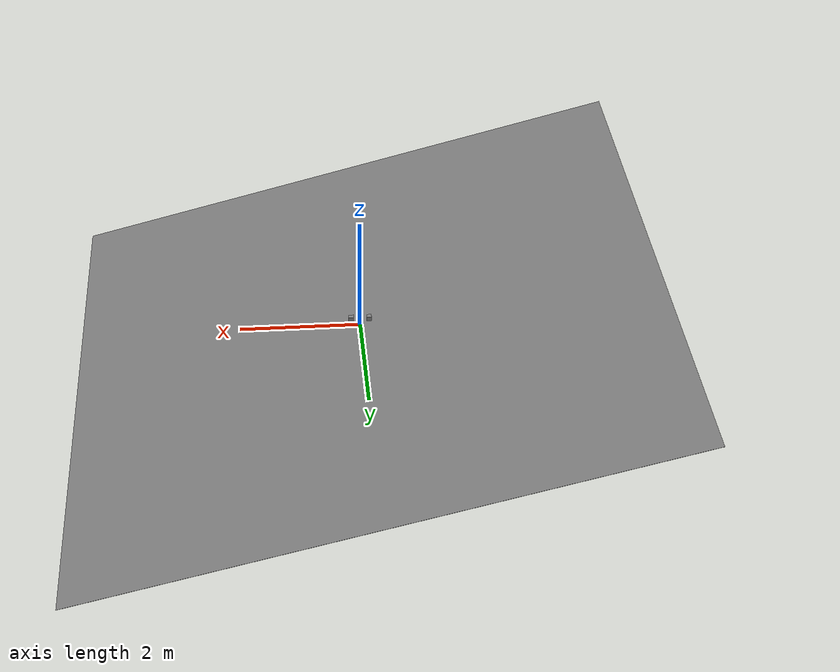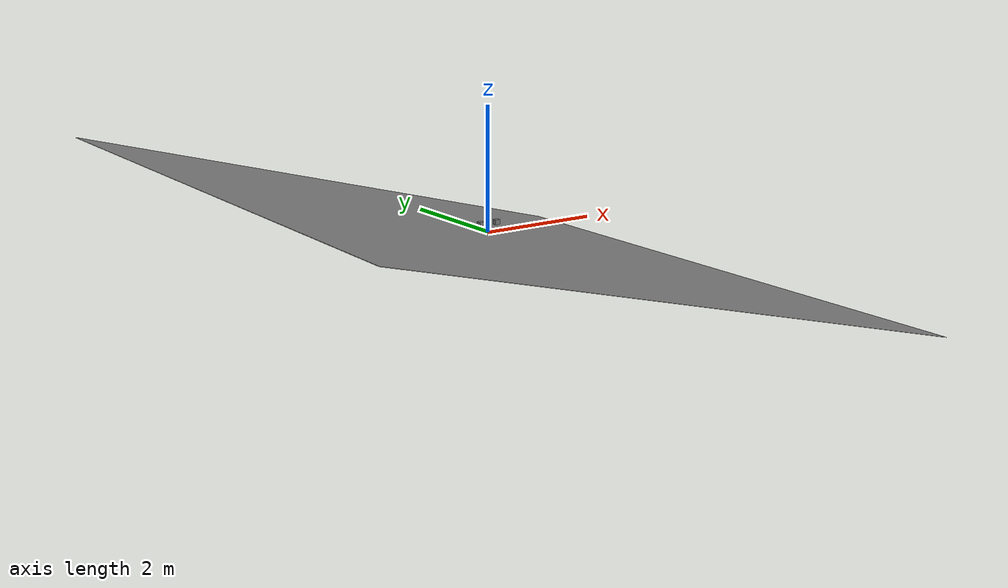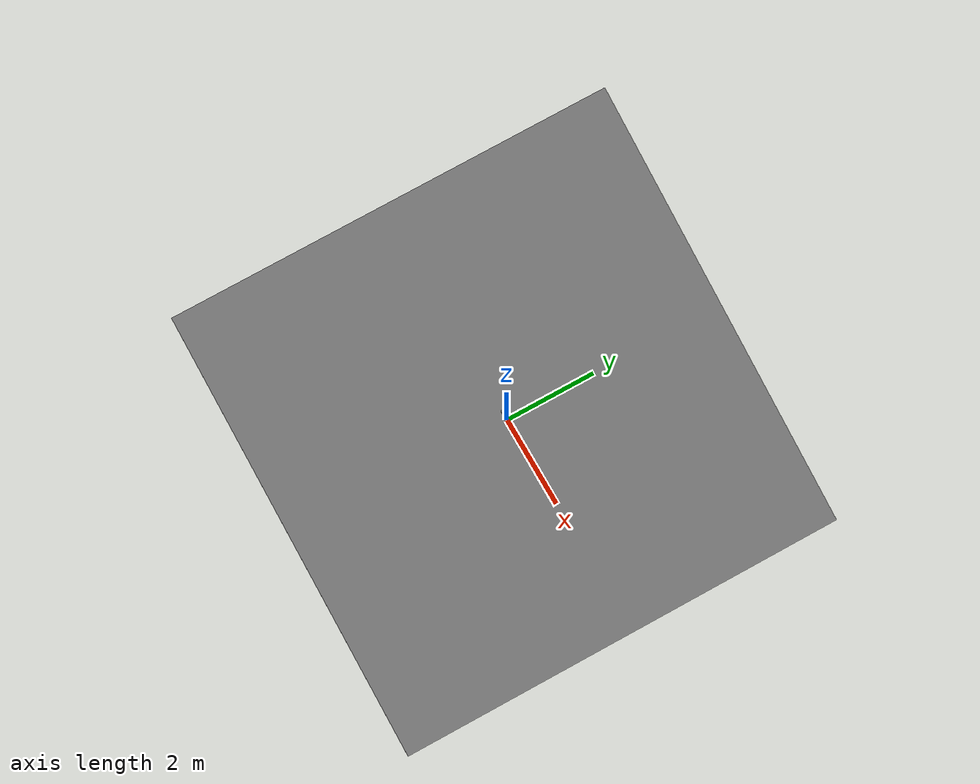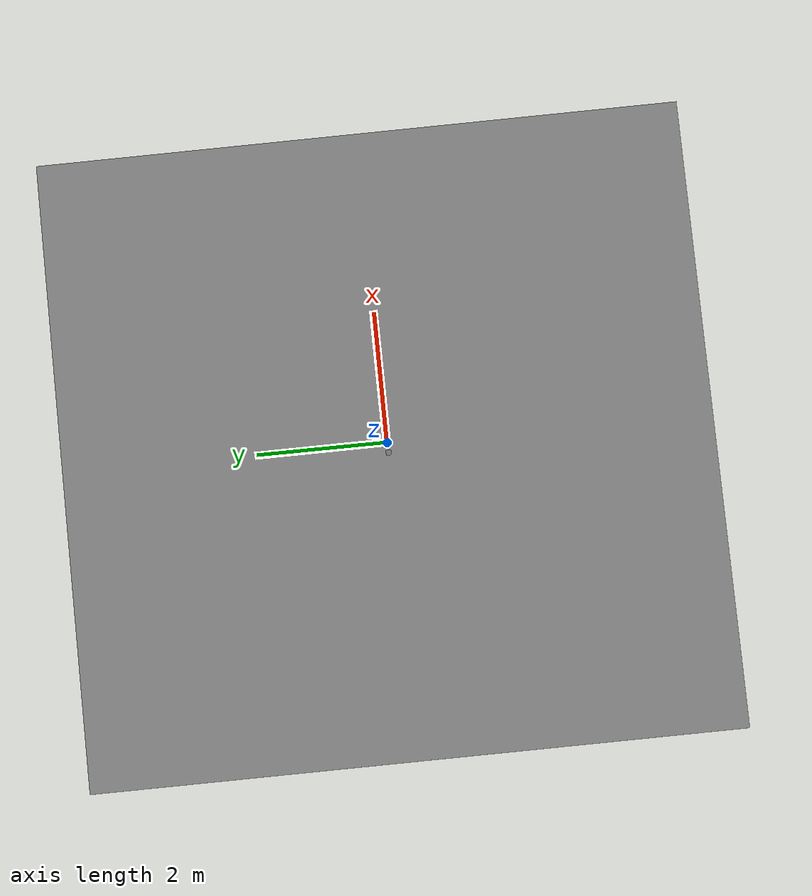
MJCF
<mujoco model="pair-override">
          <compiler angle="radian"/>
          <option gravity="0 0 -9.81" timestep="0.001" solver="Newton"
                  iterations="50" tolerance="1e-10"/>

          <worldbody>
            <body name="ramp" euler="0 0.2618 0">
              <geom name="floor" type="plane" size="5 5 0.01"
                    friction="1 0.005 0.001"/>
            </body>

            <body name="auto" pos="-0.15 0 0.15">
              <freejoint/>
              <geom name="g_auto" type="box" size="0.04 0.04 0.04" mass="0.5"
                    friction="1 0.005 0.001"/>
            </body>
            <body name="over" pos="0.15 0 0.15">
              <freejoint/>
              <geom name="g_over" type="box" size="0.04 0.04 0.04" mass="0.5"
                    friction="1 0.005 0.001"/>
            </body>
          </worldbody>

          <contact>
            <pair geom1="floor" geom2="g_over"
                  friction="0.1 0.1 0.005 0.001 0.001"/>
          </contact>
        </mujoco>
